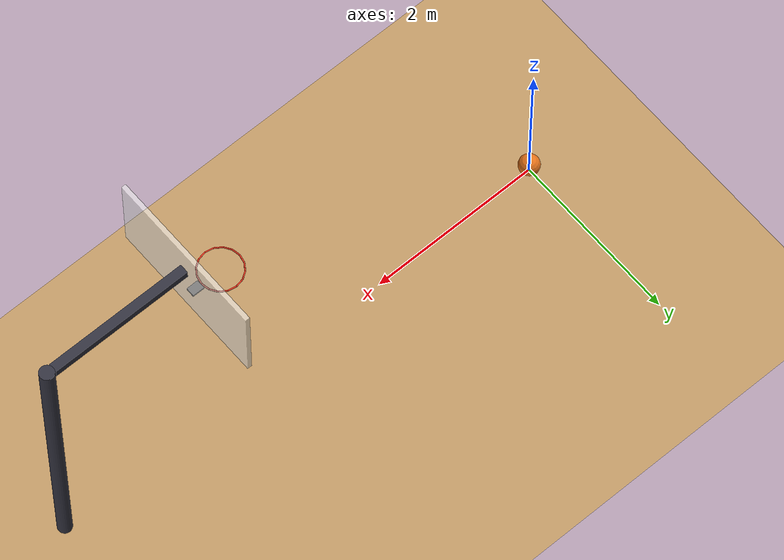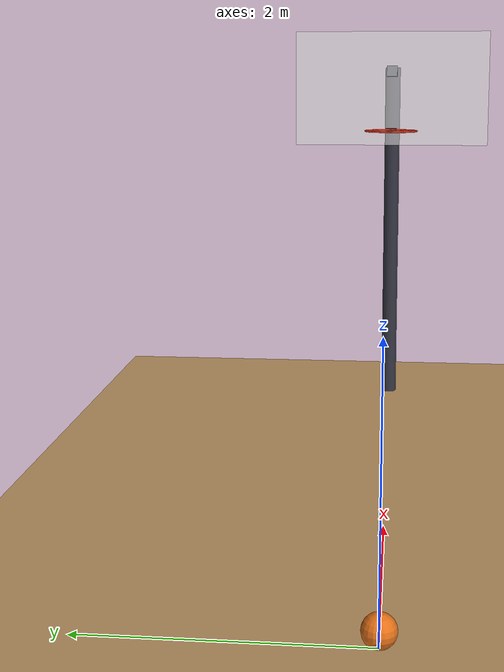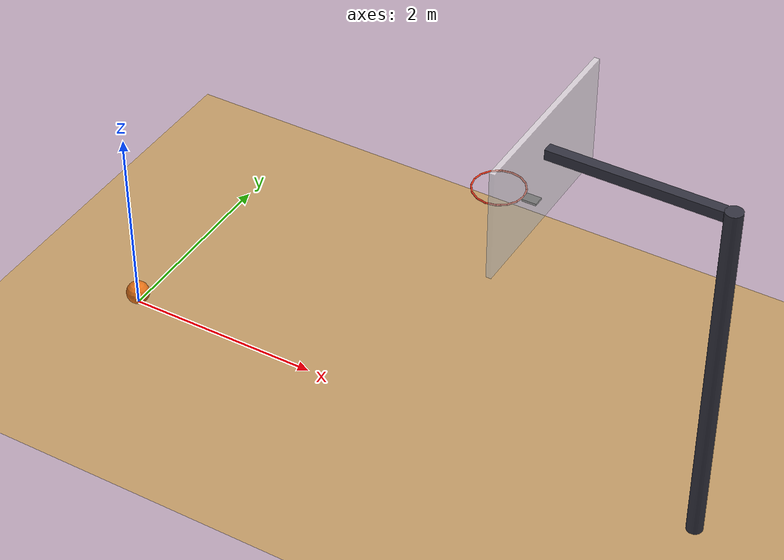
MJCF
<mujoco model="basketball_shot">
  <option timestep="0.002" gravity="0 0 -9.81"/>

  <visual>
    <global offwidth="1280" offheight="720"/>
  </visual>

  <worldbody>
    <light name="sun" pos="2 -3 8" dir="0 0.3 -1" directional="true" diffuse="0.8 0.8 0.8"/>
    <geom name="floor" type="plane" size="10 10 0.1" pos="0 0 0" rgba="0.75 0.6 0.4 1"/>

    <!-- Ball: regulation size 7 (circumference ~0.749 m, r = 0.119 m, 0.62 kg), hollow-shell inertia -->
    <body name="ball" pos="0 0 0.12">
      <freejoint name="ball_free"/>
      <inertial pos="0 0 0" mass="0.62" diaginertia="0.00585 0.00585 0.00585"/>
      <geom name="ball" type="sphere" size="0.119" rgba="0.9 0.45 0.1 1" friction="0.8 0.01 0.001"/>
    </body>

    <!-- Hoop: origin at rim center, 4 m downrange, 3.05 m high. Rim inner radius 0.2286 m, tube radius 0.008 m -->
    <body name="hoop" pos="4 0 3.05">
      <geom name="rim00" type="capsule" size="0.008" fromto="0.2366 0 0 0.2186 0.0905 0" rgba="0.9 0.2 0.1 1"/>
      <geom name="rim01" type="capsule" size="0.008" fromto="0.2186 0.0905 0 0.1673 0.1673 0" rgba="0.9 0.2 0.1 1"/>
      <geom name="rim02" type="capsule" size="0.008" fromto="0.1673 0.1673 0 0.0905 0.2186 0" rgba="0.9 0.2 0.1 1"/>
      <geom name="rim03" type="capsule" size="0.008" fromto="0.0905 0.2186 0 0 0.2366 0" rgba="0.9 0.2 0.1 1"/>
      <geom name="rim04" type="capsule" size="0.008" fromto="0 0.2366 0 -0.0905 0.2186 0" rgba="0.9 0.2 0.1 1"/>
      <geom name="rim05" type="capsule" size="0.008" fromto="-0.0905 0.2186 0 -0.1673 0.1673 0" rgba="0.9 0.2 0.1 1"/>
      <geom name="rim06" type="capsule" size="0.008" fromto="-0.1673 0.1673 0 -0.2186 0.0905 0" rgba="0.9 0.2 0.1 1"/>
      <geom name="rim07" type="capsule" size="0.008" fromto="-0.2186 0.0905 0 -0.2366 0 0" rgba="0.9 0.2 0.1 1"/>
      <geom name="rim08" type="capsule" size="0.008" fromto="-0.2366 0 0 -0.2186 -0.0905 0" rgba="0.9 0.2 0.1 1"/>
      <geom name="rim09" type="capsule" size="0.008" fromto="-0.2186 -0.0905 0 -0.1673 -0.1673 0" rgba="0.9 0.2 0.1 1"/>
      <geom name="rim10" type="capsule" size="0.008" fromto="-0.1673 -0.1673 0 -0.0905 -0.2186 0" rgba="0.9 0.2 0.1 1"/>
      <geom name="rim11" type="capsule" size="0.008" fromto="-0.0905 -0.2186 0 0 -0.2366 0" rgba="0.9 0.2 0.1 1"/>
      <geom name="rim12" type="capsule" size="0.008" fromto="0 -0.2366 0 0.0905 -0.2186 0" rgba="0.9 0.2 0.1 1"/>
      <geom name="rim13" type="capsule" size="0.008" fromto="0.0905 -0.2186 0 0.1673 -0.1673 0" rgba="0.9 0.2 0.1 1"/>
      <geom name="rim14" type="capsule" size="0.008" fromto="0.1673 -0.1673 0 0.2186 -0.0905 0" rgba="0.9 0.2 0.1 1"/>
      <geom name="rim15" type="capsule" size="0.008" fromto="0.2186 -0.0905 0 0.2366 0 0" rgba="0.9 0.2 0.1 1"/>
      <!-- bracket from back of rim to backboard face -->
      <geom name="bracket" type="box" size="0.0675 0.05 0.01" pos="0.3125 0 0" rgba="0.3 0.3 0.3 1"/>
    </body>

    <!-- Backboard (1.83 x 1.07 m), front face 0.15 m behind rim, bottom edge at 2.90 m -->
    <body name="backboard" pos="4.405 0 3.435">
      <geom name="backboard" type="box" size="0.025 0.915 0.535" rgba="0.95 0.95 0.95 0.6"/>
    </body>

    <!-- Support: arm and pole well behind the hoop -->
    <body name="support" pos="0 0 0">
      <geom name="arm" type="box" size="0.8 0.05 0.05" pos="5.23 0 3.6" rgba="0.2 0.2 0.25 1"/>
      <geom name="pole" type="cylinder" size="0.08" fromto="6.1 0 0 6.1 0 3.65" rgba="0.2 0.2 0.25 1"/>
    </body>
  </worldbody>

  <keyframe>
    <key name="start" qpos="0 0 0.12 1 0 0 0" qvel="2.865 0 8.947 0 -6 0"/>
  </keyframe>
</mujoco>
